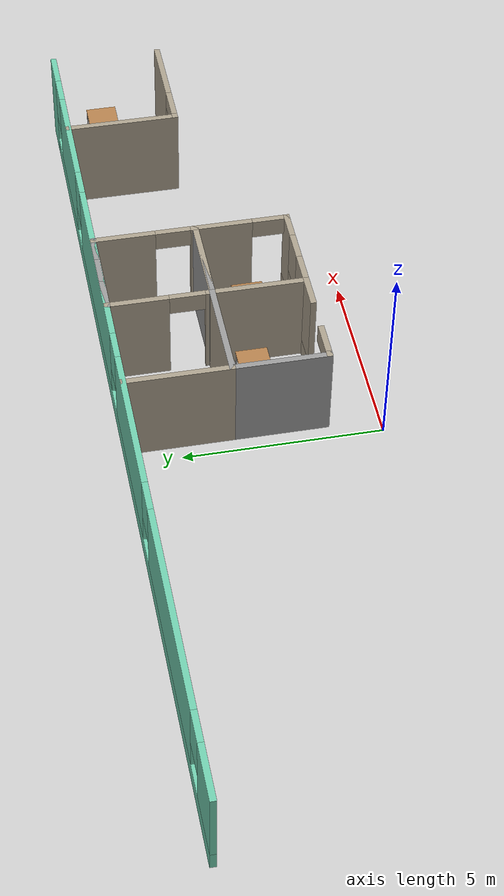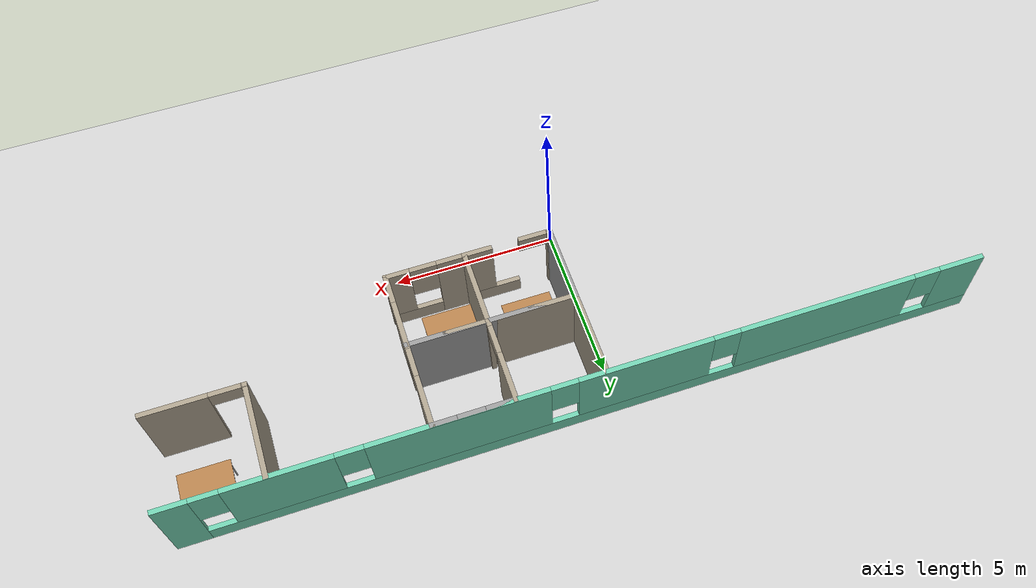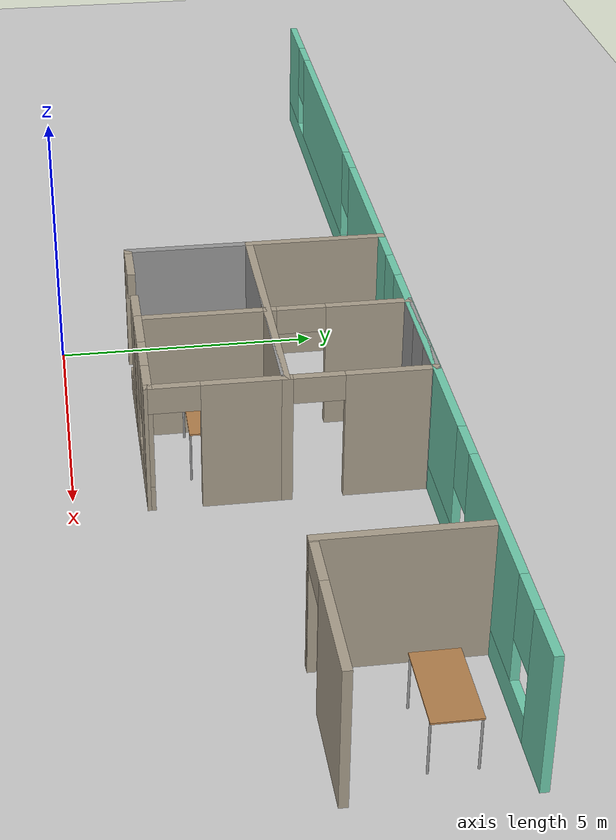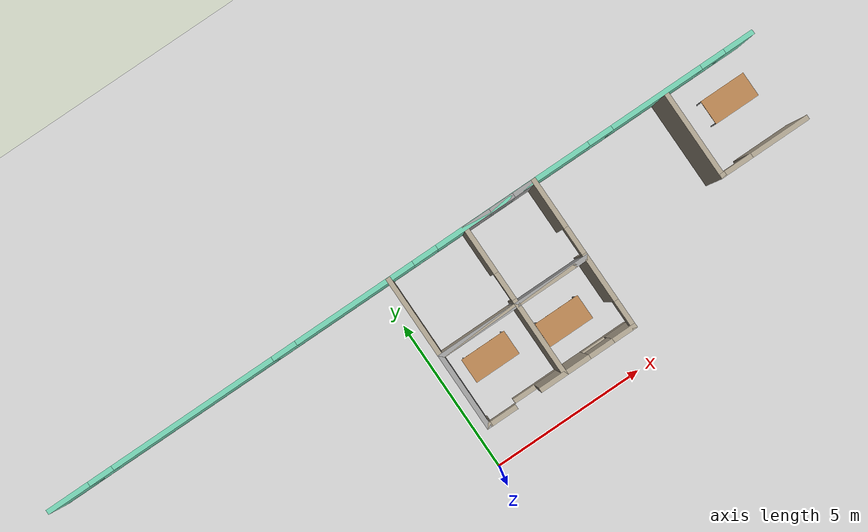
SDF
<sdf version="1.6">
 <world name="default">
  <model name="ground_plane">
   <static>1</static>
   <link name="link">
    <collision name="collision">
     <geometry><plane><normal>0 0 1</normal><size>100 100</size></plane></geometry>
     <surface>
      <contact><collide_bitmask>65535</collide_bitmask></contact>
      <friction><ode><mu>100</mu><mu2>50</mu2></ode></friction>
     </surface>
    </collision>
    <visual name="visual">
     <cast_shadows>0</cast_shadows>
     <geometry><plane><normal>0 0 1</normal><size>100 100</size></plane></geometry>
     <material>
      <script><uri>file://media/materials/scripts/gazebo.material</uri><name>Gazebo/Grey</name></script>
     </material>
    </visual>
   </link>
  </model>
  <model name="officespace">
   <pose>0.84701 -1.22405 0 0 -0 0</pose>
   <link name="Wall_10">
    <pose>0.019 7.5445 0 0 -0 3.14159</pose>
    <visual name="Wall_10_Visual_0">
     <pose>-11.5075 0 1.25 0 -0 0</pose>
     <geometry><box><size>0.985001 0.15 2.5</size></box></geometry>
     <material>
      <script><uri>file://media/materials/scripts/gazebo.material</uri><name>Gazebo/Grey</name></script>
      <ambient>0.435294 0.796078 0.67451 1</ambient>
     </material>
     <meta><layer>0</layer></meta>
    </visual>
    <collision name="Wall_10_Collision_0">
     <geometry><box><size>0.985001 0.15 2.5</size></box></geometry>
     <pose>-11.5075 0 1.25 0 -0 0</pose>
    </collision>
    <visual name="Wall_10_Visual_1">
     <pose>0.492501 0 0.25 0 -0 0</pose>
     <geometry><box><size>23.015 0.15 0.5</size></box></geometry>
     <material>
      <script><uri>file://media/materials/scripts/gazebo.material</uri><name>Gazebo/Grey</name></script>
      <ambient>0.435294 0.796078 0.67451 1</ambient>
     </material>
     <meta><layer>0</layer></meta>
    </visual>
    <collision name="Wall_10_Collision_1">
     <geometry><box><size>23.015 0.15 0.5</size></box></geometry>
     <pose>0.492501 0 0.25 0 -0 0</pose>
    </collision>
    <visual name="Wall_10_Visual_2">
     <pose>-8.6945 0 1.5 0 -0 0</pose>
     <geometry><box><size>3.041 0.15 2</size></box></geometry>
     <material>
      <script><uri>file://media/materials/scripts/gazebo.material</uri><name>Gazebo/Grey</name></script>
      <ambient>0.435294 0.796078 0.67451 1</ambient>
     </material>
     <meta><layer>0</layer></meta>
    </visual>
    <collision name="Wall_10_Collision_2">
     <geometry><box><size>3.041 0.15 2</size></box></geometry>
     <pose>-8.6945 0 1.5 0 -0 0</pose>
    </collision>
    <visual name="Wall_10_Visual_3">
     <pose>-3.784 0 1.5 0 -0 0</pose>
     <geometry><box><size>5.18 0.15 2</size></box></geometry>
     <material>
      <script><uri>file://media/materials/scripts/gazebo.material</uri><name>Gazebo/Grey</name></script>
      <ambient>0.435294 0.796078 0.67451 1</ambient>
     </material>
     <meta><layer>0</layer></meta>
    </visual>
    <collision name="Wall_10_Collision_3">
     <geometry><box><size>5.18 0.15 2</size></box></geometry>
     <pose>-3.784 0 1.5 0 -0 0</pose>
    </collision>
    <visual name="Wall_10_Visual_4">
     <pose>1.598 0 1.5 0 -0 0</pose>
     <geometry><box><size>3.984 0.15 2</size></box></geometry>
     <material>
      <script><uri>file://media/materials/scripts/gazebo.material</uri><name>Gazebo/Grey</name></script>
      <ambient>0.435294 0.796078 0.67451 1</ambient>
     </material>
     <meta><layer>0</layer></meta>
    </visual>
    <collision name="Wall_10_Collision_4">
     <geometry><box><size>3.984 0.15 2</size></box></geometry>
     <pose>1.598 0 1.5 0 -0 0</pose>
    </collision>
    <visual name="Wall_10_Visual_5">
     <pose>7.095 0 1.5 0 -0 0</pose>
     <geometry><box><size>5.41 0.15 2</size></box></geometry>
     <material>
      <script><uri>file://media/materials/scripts/gazebo.material</uri><name>Gazebo/Grey</name></script>
      <ambient>0.435294 0.796078 0.67451 1</ambient>
     </material>
     <meta><layer>0</layer></meta>
    </visual>
    <collision name="Wall_10_Collision_5">
     <geometry><box><size>5.41 0.15 2</size></box></geometry>
     <pose>7.095 0 1.5 0 -0 0</pose>
    </collision>
    <visual name="Wall_10_Visual_6">
     <pose>11.3 0 1.5 0 -0 0</pose>
     <geometry><box><size>1.4 0.15 2</size></box></geometry>
     <material>
      <script><uri>file://media/materials/scripts/gazebo.material</uri><name>Gazebo/Grey</name></script>
      <ambient>0.435294 0.796078 0.67451 1</ambient>
     </material>
     <meta><layer>0</layer></meta>
    </visual>
    <collision name="Wall_10_Collision_6">
     <geometry><box><size>1.4 0.15 2</size></box></geometry>
     <pose>11.3 0 1.5 0 -0 0</pose>
    </collision>
    <visual name="Wall_10_Visual_7">
     <pose>-10.615 0 1.9 0 -0 0</pose>
     <geometry><box><size>0.8 0.15 1.2</size></box></geometry>
     <material>
      <script><uri>file://media/materials/scripts/gazebo.material</uri><name>Gazebo/Grey</name></script>
      <ambient>0.435294 0.796078 0.67451 1</ambient>
     </material>
     <meta><layer>0</layer></meta>
    </visual>
    <collision name="Wall_10_Collision_7">
     <geometry><box><size>0.8 0.15 1.2</size></box></geometry>
     <pose>-10.615 0 1.9 0 -0 0</pose>
    </collision>
    <visual name="Wall_10_Visual_8">
     <pose>-6.774 0 1.9 0 -0 0</pose>
     <geometry><box><size>0.8 0.15 1.2</size></box></geometry>
     <material>
      <script><uri>file://media/materials/scripts/gazebo.material</uri><name>Gazebo/Grey</name></script>
      <ambient>0.435294 0.796078 0.67451 1</ambient>
     </material>
     <meta><layer>0</layer></meta>
    </visual>
    <collision name="Wall_10_Collision_8">
     <geometry><box><size>0.8 0.15 1.2</size></box></geometry>
     <pose>-6.774 0 1.9 0 -0 0</pose>
    </collision>
    <visual name="Wall_10_Visual_9">
     <pose>-0.794 0 1.9 0 -0 0</pose>
     <geometry><box><size>0.8 0.15 1.2</size></box></geometry>
     <material>
      <script><uri>file://media/materials/scripts/gazebo.material</uri><name>Gazebo/Grey</name></script>
      <ambient>0.435294 0.796078 0.67451 1</ambient>
     </material>
     <meta><layer>0</layer></meta>
    </visual>
    <collision name="Wall_10_Collision_9">
     <geometry><box><size>0.8 0.15 1.2</size></box></geometry>
     <pose>-0.794 0 1.9 0 -0 0</pose>
    </collision>
    <visual name="Wall_10_Visual_10">
     <pose>3.99 0 1.9 0 -0 0</pose>
     <geometry><box><size>0.8 0.15 1.2</size></box></geometry>
     <material>
      <script><uri>file://media/materials/scripts/gazebo.material</uri><name>Gazebo/Grey</name></script>
      <ambient>0.435294 0.796078 0.67451 1</ambient>
     </material>
     <meta><layer>0</layer></meta>
    </visual>
    <collision name="Wall_10_Collision_10">
     <geometry><box><size>0.8 0.15 1.2</size></box></geometry>
     <pose>3.99 0 1.9 0 -0 0</pose>
    </collision>
    <visual name="Wall_10_Visual_11">
     <pose>10.2 0 1.9 0 -0 0</pose>
     <geometry><box><size>0.8 0.15 1.2</size></box></geometry>
     <material>
      <script><uri>file://media/materials/scripts/gazebo.material</uri><name>Gazebo/Grey</name></script>
      <ambient>0.435294 0.796078 0.67451 1</ambient>
     </material>
     <meta><layer>0</layer></meta>
    </visual>
    <collision name="Wall_10_Collision_11">
     <geometry><box><size>0.8 0.15 1.2</size></box></geometry>
     <pose>10.2 0 1.9 0 -0 0</pose>
    </collision>
   </link>
   <link name="Wall_16">
    <collision name="Wall_16_Collision">
     <geometry><box><size>3 0.15 2.5</size></box></geometry>
     <pose>0 0 1.25 0 -0 0</pose>
    </collision>
    <visual name="Wall_16_Visual">
     <pose>0 0 1.25 0 -0 0</pose>
     <geometry><box><size>3 0.15 2.5</size></box></geometry>
     <material>
      <script><uri>file://media/materials/scripts/gazebo.material</uri><name>Gazebo/Grey</name></script>
      <ambient>0.666667 0.623529 0.54902 1</ambient>
     </material>
     <meta><layer>0</layer></meta>
    </visual>
    <pose>9.001 6.1075 0 0 0 -1.5708</pose>
   </link>
   <link name="Wall_17">
    <pose>10.426 4.6825 0 0 -0 0</pose>
    <visual name="Wall_17_Visual_0">
     <pose>-1.4115 0 1.25 0 -0 0</pose>
     <geometry><box><size>0.176999 0.15 2.5</size></box></geometry>
     <material>
      <script><uri>file://media/materials/scripts/gazebo.material</uri><name>Gazebo/Grey</name></script>
      <ambient>0.666667 0.623529 0.54902 1</ambient>
     </material>
     <meta><layer>0</layer></meta>
    </visual>
    <collision name="Wall_17_Collision_0">
     <geometry><box><size>0.176999 0.15 2.5</size></box></geometry>
     <pose>-1.4115 0 1.25 0 -0 0</pose>
    </collision>
    <visual name="Wall_17_Visual_1">
     <pose>0.538499 0 1.25 0 -0 0</pose>
     <geometry><box><size>1.923 0.15 2.5</size></box></geometry>
     <material>
      <script><uri>file://media/materials/scripts/gazebo.material</uri><name>Gazebo/Grey</name></script>
      <ambient>0.666667 0.623529 0.54902 1</ambient>
     </material>
     <meta><layer>0</layer></meta>
    </visual>
    <collision name="Wall_17_Collision_1">
     <geometry><box><size>1.923 0.15 2.5</size></box></geometry>
     <pose>0.538499 0 1.25 0 -0 0</pose>
    </collision>
    <visual name="Wall_17_Visual_2">
     <pose>-0.873001 0 2.25 0 -0 0</pose>
     <geometry><box><size>0.9 0.15 0.5</size></box></geometry>
     <material>
      <script><uri>file://media/materials/scripts/gazebo.material</uri><name>Gazebo/Grey</name></script>
      <ambient>0.666667 0.623529 0.54902 1</ambient>
     </material>
     <meta><layer>0</layer></meta>
    </visual>
    <collision name="Wall_17_Collision_2">
     <geometry><box><size>0.9 0.15 0.5</size></box></geometry>
     <pose>-0.873001 0 2.25 0 -0 0</pose>
    </collision>
   </link>
   <link name="Wall_23">
    <collision name="Wall_23_Collision">
     <geometry><box><size>2.75 0.15 2.5</size></box></geometry>
     <pose>0 0 1.25 0 -0 0</pose>
    </collision>
    <visual name="Wall_23_Visual">
     <pose>0 0 1.25 0 -0 0</pose>
     <geometry><box><size>2.75 0.15 2.5</size></box></geometry>
     <material>
      <script><uri>file://media/materials/scripts/gazebo.material</uri><name>Gazebo/Grey</name></script>
      <ambient>0.666667 0.623529 0.54902 1</ambient>
     </material>
     <meta><layer>0</layer></meta>
    </visual>
    <pose>-0.413001 6.2325 0 0 0 -1.5708</pose>
   </link>
   <link name="Wall_24">
    <collision name="Wall_24_Collision">
     <geometry><box><size>2.75 0.15 2.5</size></box></geometry>
     <pose>0 0 1.25 0 -0 0</pose>
    </collision>
    <visual name="Wall_24_Visual">
     <pose>0 0 1.25 0 -0 0</pose>
     <geometry><box><size>2.75 0.15 2.5</size></box></geometry>
     <material>
      <script><uri>file://media/materials/scripts/gazebo.material</uri><name>Gazebo/Grey</name></script>
      <ambient>1 1 1 1</ambient>
     </material>
     <meta><layer>0</layer></meta>
    </visual>
    <pose>0.887 4.9325 0 0 -0 0</pose>
   </link>
   <link name="Wall_25">
    <collision name="Wall_25_Collision">
     <geometry><box><size>2.5 0.15 2.5</size></box></geometry>
     <pose>0 0 1.25 0 -0 0</pose>
    </collision>
    <visual name="Wall_25_Visual">
     <pose>0 0 1.25 0 -0 0</pose>
     <geometry><box><size>2.5 0.15 2.5</size></box></geometry>
     <material>
      <script><uri>file://media/materials/scripts/gazebo.material</uri><name>Gazebo/Grey</name></script>
      <ambient>1 1 1 1</ambient>
     </material>
     <meta><layer>0</layer></meta>
    </visual>
    <pose>3.362 4.9325 0 0 -0 0</pose>
   </link>
   <link name="Wall_26">
    <pose>4.537 6.2325 0 0 -0 1.5708</pose>
    <visual name="Wall_26_Visual_0">
     <pose>-1.2745 0 1.25 0 -0 0</pose>
     <geometry><box><size>0.201 0.15 2.5</size></box></geometry>
     <material>
      <script><uri>file://media/materials/scripts/gazebo.material</uri><name>Gazebo/Grey</name></script>
      <ambient>0.666667 0.623529 0.54902 1</ambient>
     </material>
     <meta><layer>0</layer></meta>
    </visual>
    <collision name="Wall_26_Collision_0">
     <geometry><box><size>0.201 0.15 2.5</size></box></geometry>
     <pose>-1.2745 0 1.25 0 -0 0</pose>
    </collision>
    <visual name="Wall_26_Visual_1">
     <pose>0.5505 0 1.25 0 -0 0</pose>
     <geometry><box><size>1.649 0.15 2.5</size></box></geometry>
     <material>
      <script><uri>file://media/materials/scripts/gazebo.material</uri><name>Gazebo/Grey</name></script>
      <ambient>0.666667 0.623529 0.54902 1</ambient>
     </material>
     <meta><layer>0</layer></meta>
    </visual>
    <collision name="Wall_26_Collision_1">
     <geometry><box><size>1.649 0.15 2.5</size></box></geometry>
     <pose>0.5505 0 1.25 0 -0 0</pose>
    </collision>
    <visual name="Wall_26_Visual_2">
     <pose>-0.724 0 2.25 0 -0 0</pose>
     <geometry><box><size>0.9 0.15 0.5</size></box></geometry>
     <material>
      <script><uri>file://media/materials/scripts/gazebo.material</uri><name>Gazebo/Grey</name></script>
      <ambient>0.666667 0.623529 0.54902 1</ambient>
     </material>
     <meta><layer>0</layer></meta>
    </visual>
    <collision name="Wall_26_Collision_2">
     <geometry><box><size>0.9 0.15 0.5</size></box></geometry>
     <pose>-0.724 0 2.25 0 -0 0</pose>
    </collision>
   </link>
   <link name="Wall_27">
    <pose>3.362 7.5325 0 0 -0 3.14159</pose>
    <visual name="Wall_27_Visual_0">
     <pose>-0.8615 0 1.25 0 -0 0</pose>
     <geometry><box><size>0.777 0.15 2.5</size></box></geometry>
     <material>
      <script><uri>file://media/materials/scripts/gazebo.material</uri><name>Gazebo/Grey</name></script>
      <ambient>1 1 1 1</ambient>
     </material>
     <meta><layer>0</layer></meta>
    </visual>
    <collision name="Wall_27_Collision_0">
     <geometry><box><size>0.777 0.15 2.5</size></box></geometry>
     <pose>-0.8615 0 1.25 0 -0 0</pose>
    </collision>
    <visual name="Wall_27_Visual_1">
     <pose>0.3885 0 0.25 0 -0 0</pose>
     <geometry><box><size>1.723 0.15 0.5</size></box></geometry>
     <material>
      <script><uri>file://media/materials/scripts/gazebo.material</uri><name>Gazebo/Grey</name></script>
      <ambient>1 1 1 1</ambient>
     </material>
     <meta><layer>0</layer></meta>
    </visual>
    <collision name="Wall_27_Collision_1">
     <geometry><box><size>1.723 0.15 0.5</size></box></geometry>
     <pose>0.3885 0 0.25 0 -0 0</pose>
    </collision>
    <visual name="Wall_27_Visual_2">
     <pose>0.7885 0 1.5 0 -0 0</pose>
     <geometry><box><size>0.923 0.15 2</size></box></geometry>
     <material>
      <script><uri>file://media/materials/scripts/gazebo.material</uri><name>Gazebo/Grey</name></script>
      <ambient>1 1 1 1</ambient>
     </material>
     <meta><layer>0</layer></meta>
    </visual>
    <collision name="Wall_27_Collision_2">
     <geometry><box><size>0.923 0.15 2</size></box></geometry>
     <pose>0.7885 0 1.5 0 -0 0</pose>
    </collision>
    <visual name="Wall_27_Visual_3">
     <pose>-0.073 0 1.9 0 -0 0</pose>
     <geometry><box><size>0.8 0.15 1.2</size></box></geometry>
     <material>
      <script><uri>file://media/materials/scripts/gazebo.material</uri><name>Gazebo/Grey</name></script>
      <ambient>1 1 1 1</ambient>
     </material>
     <meta><layer>0</layer></meta>
    </visual>
    <collision name="Wall_27_Collision_3">
     <geometry><box><size>0.8 0.15 1.2</size></box></geometry>
     <pose>-0.073 0 1.9 0 -0 0</pose>
    </collision>
   </link>
   <link name="Wall_28">
    <pose>2.187 6.2325 0 0 0 -1.5708</pose>
    <visual name="Wall_28_Visual_0">
     <pose>-0.5735 0 1.25 0 -0 0</pose>
     <geometry><box><size>1.603 0.15 2.5</size></box></geometry>
     <material>
      <script><uri>file://media/materials/scripts/gazebo.material</uri><name>Gazebo/Grey</name></script>
      <ambient>0.666667 0.623529 0.54902 1</ambient>
     </material>
     <meta><layer>0</layer></meta>
    </visual>
    <collision name="Wall_28_Collision_0">
     <geometry><box><size>1.603 0.15 2.5</size></box></geometry>
     <pose>-0.5735 0 1.25 0 -0 0</pose>
    </collision>
    <visual name="Wall_28_Visual_1">
     <pose>1.2515 0 1.25 0 -0 0</pose>
     <geometry><box><size>0.247 0.15 2.5</size></box></geometry>
     <material>
      <script><uri>file://media/materials/scripts/gazebo.material</uri><name>Gazebo/Grey</name></script>
      <ambient>0.666667 0.623529 0.54902 1</ambient>
     </material>
     <meta><layer>0</layer></meta>
    </visual>
    <collision name="Wall_28_Collision_1">
     <geometry><box><size>0.247 0.15 2.5</size></box></geometry>
     <pose>1.2515 0 1.25 0 -0 0</pose>
    </collision>
    <visual name="Wall_28_Visual_2">
     <pose>0.678 0 2.25 0 -0 0</pose>
     <geometry><box><size>0.9 0.15 0.5</size></box></geometry>
     <material>
      <script><uri>file://media/materials/scripts/gazebo.material</uri><name>Gazebo/Grey</name></script>
      <ambient>0.666667 0.623529 0.54902 1</ambient>
     </material>
     <meta><layer>0</layer></meta>
    </visual>
    <collision name="Wall_28_Collision_2">
     <geometry><box><size>0.9 0.15 0.5</size></box></geometry>
     <pose>0.678 0 2.25 0 -0 0</pose>
    </collision>
   </link>
   <link name="Wall_29">
    <collision name="Wall_29_Collision">
     <geometry><box><size>2.5 0.15 2.5</size></box></geometry>
     <pose>0 0 1.25 0 -0 0</pose>
    </collision>
    <visual name="Wall_29_Visual">
     <pose>0 0 1.25 0 -0 0</pose>
     <geometry><box><size>2.5 0.15 2.5</size></box></geometry>
     <material>
      <script><uri>file://media/materials/scripts/gazebo.material</uri><name>Gazebo/Grey</name></script>
      <ambient>0.666667 0.623529 0.54902 1</ambient>
     </material>
     <meta><layer>0</layer></meta>
    </visual>
    <pose>2.187 3.7575 0 0 0 -1.5708</pose>
   </link>
   <link name="Wall_30">
    <pose>3.362 2.5825 0 0 -0 0</pose>
    <visual name="Wall_30_Visual_0">
     <pose>-0.7885 0 1.25 0 -0 0</pose>
     <geometry><box><size>0.923 0.15 2.5</size></box></geometry>
     <material>
      <script><uri>file://media/materials/scripts/gazebo.material</uri><name>Gazebo/Grey</name></script>
      <ambient>0.666667 0.623529 0.54902 1</ambient>
     </material>
     <meta><layer>0</layer></meta>
    </visual>
    <collision name="Wall_30_Collision_0">
     <geometry><box><size>0.923 0.15 2.5</size></box></geometry>
     <pose>-0.7885 0 1.25 0 -0 0</pose>
    </collision>
    <visual name="Wall_30_Visual_1">
     <pose>0.4615 0 0.25 0 -0 0</pose>
     <geometry><box><size>1.577 0.15 0.5</size></box></geometry>
     <material>
      <script><uri>file://media/materials/scripts/gazebo.material</uri><name>Gazebo/Grey</name></script>
      <ambient>0.666667 0.623529 0.54902 1</ambient>
     </material>
     <meta><layer>0</layer></meta>
    </visual>
    <collision name="Wall_30_Collision_1">
     <geometry><box><size>1.577 0.15 0.5</size></box></geometry>
     <pose>0.4615 0 0.25 0 -0 0</pose>
    </collision>
    <visual name="Wall_30_Visual_2">
     <pose>0.8615 0 1.5 0 -0 0</pose>
     <geometry><box><size>0.777 0.15 2</size></box></geometry>
     <material>
      <script><uri>file://media/materials/scripts/gazebo.material</uri><name>Gazebo/Grey</name></script>
      <ambient>0.666667 0.623529 0.54902 1</ambient>
     </material>
     <meta><layer>0</layer></meta>
    </visual>
    <collision name="Wall_30_Collision_2">
     <geometry><box><size>0.777 0.15 2</size></box></geometry>
     <pose>0.8615 0 1.5 0 -0 0</pose>
    </collision>
    <visual name="Wall_30_Visual_3">
     <pose>0.073 0 1.9 0 -0 0</pose>
     <geometry><box><size>0.8 0.15 1.2</size></box></geometry>
     <material>
      <script><uri>file://media/materials/scripts/gazebo.material</uri><name>Gazebo/Grey</name></script>
      <ambient>0.666667 0.623529 0.54902 1</ambient>
     </material>
     <meta><layer>0</layer></meta>
    </visual>
    <collision name="Wall_30_Collision_3">
     <geometry><box><size>0.8 0.15 1.2</size></box></geometry>
     <pose>0.073 0 1.9 0 -0 0</pose>
    </collision>
   </link>
   <link name="Wall_31">
    <pose>4.537 3.7575 0 0 -0 1.5708</pose>
    <visual name="Wall_31_Visual_0">
     <pose>-1.2165 0 1.25 0 -0 0</pose>
     <geometry><box><size>0.067 0.15 2.5</size></box></geometry>
     <material>
      <script><uri>file://media/materials/scripts/gazebo.material</uri><name>Gazebo/Grey</name></script>
      <ambient>0.666667 0.623529 0.54902 1</ambient>
     </material>
     <meta><layer>0</layer></meta>
    </visual>
    <collision name="Wall_31_Collision_0">
     <geometry><box><size>0.067 0.15 2.5</size></box></geometry>
     <pose>-1.2165 0 1.25 0 -0 0</pose>
    </collision>
    <visual name="Wall_31_Visual_1">
     <pose>0.4835 0 1.25 0 -0 0</pose>
     <geometry><box><size>1.533 0.15 2.5</size></box></geometry>
     <material>
      <script><uri>file://media/materials/scripts/gazebo.material</uri><name>Gazebo/Grey</name></script>
      <ambient>0.666667 0.623529 0.54902 1</ambient>
     </material>
     <meta><layer>0</layer></meta>
    </visual>
    <collision name="Wall_31_Collision_1">
     <geometry><box><size>1.533 0.15 2.5</size></box></geometry>
     <pose>0.4835 0 1.25 0 -0 0</pose>
    </collision>
    <visual name="Wall_31_Visual_2">
     <pose>-0.733 0 2.25 0 -0 0</pose>
     <geometry><box><size>0.9 0.15 0.5</size></box></geometry>
     <material>
      <script><uri>file://media/materials/scripts/gazebo.material</uri><name>Gazebo/Grey</name></script>
      <ambient>0.666667 0.623529 0.54902 1</ambient>
     </material>
     <meta><layer>0</layer></meta>
    </visual>
    <collision name="Wall_31_Collision_2">
     <geometry><box><size>0.9 0.15 0.5</size></box></geometry>
     <pose>-0.733 0 2.25 0 -0 0</pose>
    </collision>
   </link>
   <link name="Wall_32">
    <collision name="Wall_32_Collision">
     <geometry><box><size>5.1 0.15 2.5</size></box></geometry>
     <pose>0 0 1.25 0 -0 0</pose>
    </collision>
    <visual name="Wall_32_Visual">
     <pose>0 0 1.25 0 -0 0</pose>
     <geometry><box><size>5.1 0.15 2.5</size></box></geometry>
     <material>
      <script><uri>file://media/materials/scripts/gazebo.material</uri><name>Gazebo/Grey</name></script>
      <ambient>0.666667 0.623529 0.54902 1</ambient>
     </material>
     <meta><layer>0</layer></meta>
    </visual>
    <pose>2.062 4.9325 0 0 -0 3.14159</pose>
   </link>
   <link name="Wall_33">
    <collision name="Wall_33_Collision">
     <geometry><box><size>2.5 0.15 2.5</size></box></geometry>
     <pose>0 0 1.25 0 -0 0</pose>
    </collision>
    <visual name="Wall_33_Visual">
     <pose>0 0 1.25 0 -0 0</pose>
     <geometry><box><size>2.5 0.15 2.5</size></box></geometry>
     <material>
      <script><uri>file://media/materials/scripts/gazebo.material</uri><name>Gazebo/Grey</name></script>
      <ambient>1 1 1 1</ambient>
     </material>
     <meta><layer>0</layer></meta>
    </visual>
    <pose>-0.413001 3.7575 0 0 0 -1.5708</pose>
   </link>
   <link name="Wall_40">
    <collision name="Wall_40_Collision">
     <geometry><box><size>2.5 0.15 2.5</size></box></geometry>
     <pose>0 0 1.25 0 -0 0</pose>
    </collision>
    <visual name="Wall_40_Visual">
     <pose>0 0 1.25 0 -0 0</pose>
     <geometry><box><size>2.5 0.15 2.5</size></box></geometry>
     <material>
      <script><uri>file://media/materials/scripts/gazebo.material</uri><name>Gazebo/Grey</name></script>
      <ambient>0.666667 0.623529 0.54902 1</ambient>
     </material>
     <meta><layer>0</layer></meta>
    </visual>
    <pose>-0.413001 3.7575 0 0 0 -1.5708</pose>
   </link>
   <link name="Wall_41">
    <pose>0.887 2.5825 0 0 -0 0</pose>
    <visual name="Wall_41_Visual_0">
     <pose>-1.283 0 1.25 0 -0 0</pose>
     <geometry><box><size>0.184 0.15 2.5</size></box></geometry>
     <material>
      <script><uri>file://media/materials/scripts/gazebo.material</uri><name>Gazebo/Grey</name></script>
      <ambient>0.666667 0.623529 0.54902 1</ambient>
     </material>
     <meta><layer>0</layer></meta>
    </visual>
    <collision name="Wall_41_Collision_0">
     <geometry><box><size>0.184 0.15 2.5</size></box></geometry>
     <pose>-1.283 0 1.25 0 -0 0</pose>
    </collision>
    <visual name="Wall_41_Visual_1">
     <pose>0.542 0 0.25 0 -0 0</pose>
     <geometry><box><size>1.666 0.15 0.5</size></box></geometry>
     <material>
      <script><uri>file://media/materials/scripts/gazebo.material</uri><name>Gazebo/Grey</name></script>
      <ambient>0.666667 0.623529 0.54902 1</ambient>
     </material>
     <meta><layer>0</layer></meta>
    </visual>
    <collision name="Wall_41_Collision_1">
     <geometry><box><size>1.666 0.15 0.5</size></box></geometry>
     <pose>0.542 0 0.25 0 -0 0</pose>
    </collision>
    <visual name="Wall_41_Visual_2">
     <pose>0.9195 0 1.5 0 -0 0</pose>
     <geometry><box><size>0.911 0.15 2</size></box></geometry>
     <material>
      <script><uri>file://media/materials/scripts/gazebo.material</uri><name>Gazebo/Grey</name></script>
      <ambient>0.666667 0.623529 0.54902 1</ambient>
     </material>
     <meta><layer>0</layer></meta>
    </visual>
    <collision name="Wall_41_Collision_2">
     <geometry><box><size>0.911 0.15 2</size></box></geometry>
     <pose>0.9195 0 1.5 0 -0 0</pose>
    </collision>
    <visual name="Wall_41_Visual_3">
     <pose>-0.7635 0 2.25 0 -0 0</pose>
     <geometry><box><size>0.855 0.15 0.5</size></box></geometry>
     <material>
      <script><uri>file://media/materials/scripts/gazebo.material</uri><name>Gazebo/Grey</name></script>
      <ambient>0.666667 0.623529 0.54902 1</ambient>
     </material>
     <meta><layer>0</layer></meta>
    </visual>
    <collision name="Wall_41_Collision_3">
     <geometry><box><size>0.855 0.15 0.5</size></box></geometry>
     <pose>-0.7635 0 2.25 0 -0 0</pose>
    </collision>
   </link>
   <static>1</static>
  </model>
  <model name="table_clone_0">
   <static>1</static>
   <link name="link">
    <collision name="surface">
     <pose>0 0 1 0 -0 0</pose>
     <geometry><box><size>1.5 0.8 0.03</size></box></geometry>
     <surface><friction><ode><mu>0.6</mu><mu2>0.6</mu2></ode></friction></surface>
    </collision>
    <visual name="visual1">
     <pose>0 0 1 0 -0 0</pose>
     <geometry><box><size>1.5 0.8 0.03</size></box></geometry>
     <material>
      <script><uri>file://media/materials/scripts/gazebo.material</uri><name>Gazebo/Wood</name></script>
     </material>
    </visual>
    <collision name="front_left_leg">
     <pose>0.68 0.38 0.5 0 -0 0</pose>
     <geometry><cylinder><radius>0.02</radius><length>1</length></cylinder></geometry>
    </collision>
    <visual name="front_left_leg">
     <pose>0.68 0.38 0.5 0 -0 0</pose>
     <geometry><cylinder><radius>0.02</radius><length>1</length></cylinder></geometry>
     <material>
      <script><uri>file://media/materials/scripts/gazebo.material</uri><name>Gazebo/Grey</name></script>
     </material>
    </visual>
    <collision name="front_right_leg">
     <pose>0.68 -0.38 0.5 0 -0 0</pose>
     <geometry><cylinder><radius>0.02</radius><length>1</length></cylinder></geometry>
    </collision>
    <visual name="front_right_leg">
     <pose>0.68 -0.38 0.5 0 -0 0</pose>
     <geometry><cylinder><radius>0.02</radius><length>1</length></cylinder></geometry>
     <material>
      <script><uri>file://media/materials/scripts/gazebo.material</uri><name>Gazebo/Grey</name></script>
     </material>
    </visual>
    <collision name="back_right_leg">
     <pose>-0.68 -0.38 0.5 0 -0 0</pose>
     <geometry><cylinder><radius>0.02</radius><length>1</length></cylinder></geometry>
    </collision>
    <visual name="back_right_leg">
     <pose>-0.68 -0.38 0.5 0 -0 0</pose>
     <geometry><cylinder><radius>0.02</radius><length>1</length></cylinder></geometry>
     <material>
      <script><uri>file://media/materials/scripts/gazebo.material</uri><name>Gazebo/Grey</name></script>
     </material>
    </visual>
    <collision name="back_left_leg">
     <pose>-0.68 0.38 0.5 0 -0 0</pose>
     <geometry><cylinder><radius>0.02</radius><length>1</length></cylinder></geometry>
    </collision>
    <visual name="back_left_leg">
     <pose>-0.68 0.38 0.5 0 -0 0</pose>
     <geometry><cylinder><radius>0.02</radius><length>1</length></cylinder></geometry>
     <material>
      <script><uri>file://media/materials/scripts/gazebo.material</uri><name>Gazebo/Grey</name></script>
     </material>
    </visual>
   </link>
   <pose>3.9423 2.50912 0 0 -0 0</pose>
  </model>
  <model name="table_clone_3">
   <static>1</static>
   <link name="link">
    <collision name="surface">
     <pose>0 0 1 0 -0 0</pose>
     <geometry><box><size>1.5 0.8 0.03</size></box></geometry>
     <surface><friction><ode><mu>0.6</mu><mu2>0.6</mu2></ode></friction></surface>
    </collision>
    <visual name="visual1">
     <pose>0 0 1 0 -0 0</pose>
     <geometry><box><size>1.5 0.8 0.03</size></box></geometry>
     <material>
      <script><uri>file://media/materials/scripts/gazebo.material</uri><name>Gazebo/Wood</name></script>
     </material>
    </visual>
    <collision name="front_left_leg">
     <pose>0.68 0.38 0.5 0 -0 0</pose>
     <geometry><cylinder><radius>0.02</radius><length>1</length></cylinder></geometry>
    </collision>
    <visual name="front_left_leg">
     <pose>0.68 0.38 0.5 0 -0 0</pose>
     <geometry><cylinder><radius>0.02</radius><length>1</length></cylinder></geometry>
     <material>
      <script><uri>file://media/materials/scripts/gazebo.material</uri><name>Gazebo/Grey</name></script>
     </material>
    </visual>
    <collision name="front_right_leg">
     <pose>0.68 -0.38 0.5 0 -0 0</pose>
     <geometry><cylinder><radius>0.02</radius><length>1</length></cylinder></geometry>
    </collision>
    <visual name="front_right_leg">
     <pose>0.68 -0.38 0.5 0 -0 0</pose>
     <geometry><cylinder><radius>0.02</radius><length>1</length></cylinder></geometry>
     <material>
      <script><uri>file://media/materials/scripts/gazebo.material</uri><name>Gazebo/Grey</name></script>
     </material>
    </visual>
    <collision name="back_right_leg">
     <pose>-0.68 -0.38 0.5 0 -0 0</pose>
     <geometry><cylinder><radius>0.02</radius><length>1</length></cylinder></geometry>
    </collision>
    <visual name="back_right_leg">
     <pose>-0.68 -0.38 0.5 0 -0 0</pose>
     <geometry><cylinder><radius>0.02</radius><length>1</length></cylinder></geometry>
     <material>
      <script><uri>file://media/materials/scripts/gazebo.material</uri><name>Gazebo/Grey</name></script>
     </material>
    </visual>
    <collision name="back_left_leg">
     <pose>-0.68 0.38 0.5 0 -0 0</pose>
     <geometry><cylinder><radius>0.02</radius><length>1</length></cylinder></geometry>
    </collision>
    <visual name="back_left_leg">
     <pose>-0.68 0.38 0.5 0 -0 0</pose>
     <geometry><cylinder><radius>0.02</radius><length>1</length></cylinder></geometry>
     <material>
      <script><uri>file://media/materials/scripts/gazebo.material</uri><name>Gazebo/Grey</name></script>
     </material>
    </visual>
   </link>
   <pose>1.59545 2.85669 0 0 -0 0</pose>
  </model>
  <model name="table_clone_5">
   <static>1</static>
   <link name="link">
    <collision name="surface">
     <pose>0 0 1 0 -0 0</pose>
     <geometry><box><size>1.5 0.8 0.03</size></box></geometry>
     <surface><friction><ode><mu>0.6</mu><mu2>0.6</mu2></ode></friction></surface>
    </collision>
    <visual name="visual1">
     <pose>0 0 1 0 -0 0</pose>
     <geometry><box><size>1.5 0.8 0.03</size></box></geometry>
     <material>
      <script><uri>file://media/materials/scripts/gazebo.material</uri><name>Gazebo/Wood</name></script>
     </material>
    </visual>
    <collision name="front_left_leg">
     <pose>0.68 0.38 0.5 0 -0 0</pose>
     <geometry><cylinder><radius>0.02</radius><length>1</length></cylinder></geometry>
    </collision>
    <visual name="front_left_leg">
     <pose>0.68 0.38 0.5 0 -0 0</pose>
     <geometry><cylinder><radius>0.02</radius><length>1</length></cylinder></geometry>
     <material>
      <script><uri>file://media/materials/scripts/gazebo.material</uri><name>Gazebo/Grey</name></script>
     </material>
    </visual>
    <collision name="front_right_leg">
     <pose>0.68 -0.38 0.5 0 -0 0</pose>
     <geometry><cylinder><radius>0.02</radius><length>1</length></cylinder></geometry>
    </collision>
    <visual name="front_right_leg">
     <pose>0.68 -0.38 0.5 0 -0 0</pose>
     <geometry><cylinder><radius>0.02</radius><length>1</length></cylinder></geometry>
     <material>
      <script><uri>file://media/materials/scripts/gazebo.material</uri><name>Gazebo/Grey</name></script>
     </material>
    </visual>
    <collision name="back_right_leg">
     <pose>-0.68 -0.38 0.5 0 -0 0</pose>
     <geometry><cylinder><radius>0.02</radius><length>1</length></cylinder></geometry>
    </collision>
    <visual name="back_right_leg">
     <pose>-0.68 -0.38 0.5 0 -0 0</pose>
     <geometry><cylinder><radius>0.02</radius><length>1</length></cylinder></geometry>
     <material>
      <script><uri>file://media/materials/scripts/gazebo.material</uri><name>Gazebo/Grey</name></script>
     </material>
    </visual>
    <collision name="back_left_leg">
     <pose>-0.68 0.38 0.5 0 -0 0</pose>
     <geometry><cylinder><radius>0.02</radius><length>1</length></cylinder></geometry>
    </collision>
    <visual name="back_left_leg">
     <pose>-0.68 0.38 0.5 0 -0 0</pose>
     <geometry><cylinder><radius>0.02</radius><length>1</length></cylinder></geometry>
     <material>
      <script><uri>file://media/materials/scripts/gazebo.material</uri><name>Gazebo/Grey</name></script>
     </material>
    </visual>
   </link>
   <pose>11.597 5.14136 0 0 -0 0</pose>
  </model>
 </world>
</sdf>
